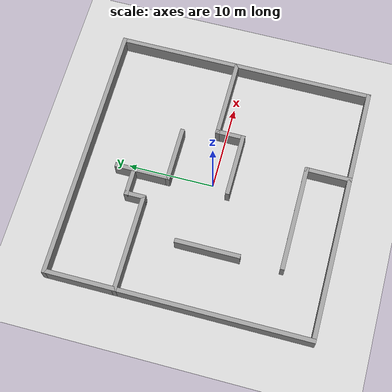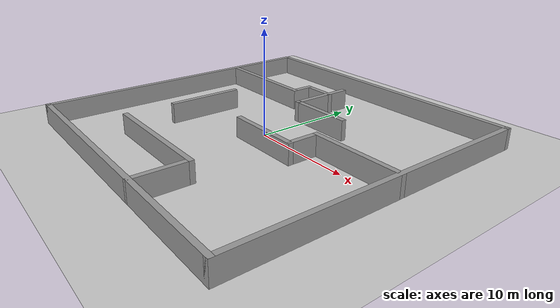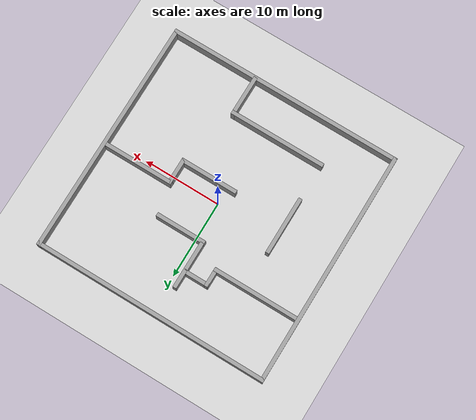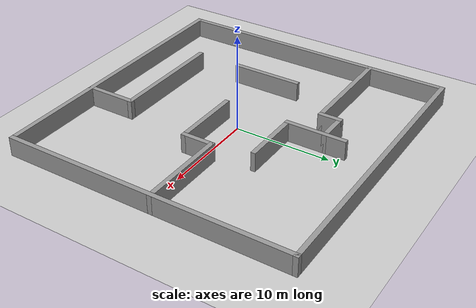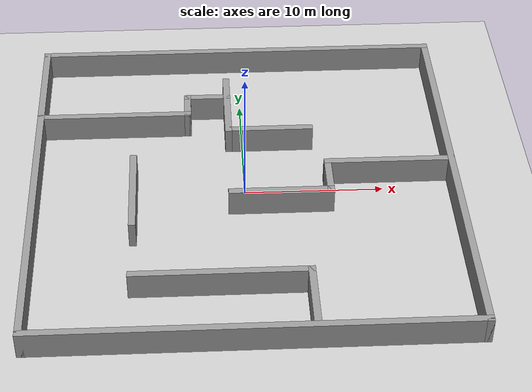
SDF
<sdf version="1.6">
 <world name="default">
  <light name="sun" type="directional">
   <pose>0 0 10 0 -0 0</pose>
   <diffuse>0.8 0.8 0.8 1</diffuse>
   <specular>0.1 0.1 0.1 1</specular>
   <attenuation>
    <range>1000</range>
    <constant>0.9</constant>
    <linear>0.01</linear>
    <quadratic>0.001</quadratic>
   </attenuation>
   <direction>-0.5 0.5 -1</direction>
  </light>
  <model name="ground_plane">
   <static>1</static>
   <link name="link">
    <collision name="collision">
     <geometry><plane><normal>0 0 1</normal><size>100 100</size></plane></geometry>
     <surface><friction><ode><mu>100</mu><mu2>50</mu2></ode></friction></surface>
    </collision>
    <visual name="visual">
     <cast_shadows>0</cast_shadows>
     <geometry><plane><normal>0 0 1</normal><size>100 100</size></plane></geometry>
     <material>
      <script><uri>file://media/materials/scripts/gazebo.material</uri><name>Gazebo/Grey</name></script>
     </material>
    </visual>
   </link>
  </model>
  <gravity>0 0 -9.8</gravity>
  <magnetic_field>6e-06 2.3e-05 -4.2e-05</magnetic_field>
  <atmosphere type="adiabatic"/>
  <physics name="default_physics" default="0" type="ode">
   <max_step_size>0.001</max_step_size>
   <real_time_factor>1</real_time_factor>
   <real_time_update_rate>1000</real_time_update_rate>
  </physics>
  <scene><ambient>0.4 0.4 0.4 1</ambient><background>0.7 0.7 0.7 1</background><shadows>1</shadows></scene>
  <spherical_coordinates>
   <surface_model>EARTH_WGS84</surface_model>
   <latitude_deg>0</latitude_deg>
   <longitude_deg>0</longitude_deg>
   <elevation>0</elevation>
   <heading_deg>0</heading_deg>
  </spherical_coordinates>
  <model name="Untitled">
   <link name="Wall_0">
    <collision name="Wall_0_Collision">
     <geometry><box><size>30.5 0.5 2</size></box></geometry>
     <pose>0 0 1 0 -0 0</pose>
    </collision>
    <visual name="Wall_0_Visual">
     <pose>0 0 1 0 -0 0</pose>
     <geometry><box><size>30.5 0.5 2</size></box></geometry>
     <material>
      <script><uri>file://media/materials/scripts/gazebo.material</uri><name>Gazebo/Grey</name></script>
      <ambient>1 1 1 1</ambient>
     </material>
    </visual>
    <pose>-15 0 0 0 0 -1.5708</pose>
   </link>
   <link name="Wall_1">
    <collision name="Wall_1_Collision">
     <geometry><box><size>30.5 0.5 2</size></box></geometry>
     <pose>0 0 1 0 -0 0</pose>
    </collision>
    <visual name="Wall_1_Visual">
     <pose>0 0 1 0 -0 0</pose>
     <geometry><box><size>30.5 0.5 2</size></box></geometry>
     <material>
      <script><uri>file://media/materials/scripts/gazebo.material</uri><name>Gazebo/Grey</name></script>
      <ambient>1 1 1 1</ambient>
     </material>
    </visual>
    <pose>0 -15 0 0 -0 0</pose>
   </link>
   <link name="Wall_10">
    <collision name="Wall_10_Collision">
     <geometry><box><size>7.5 0.5 2</size></box></geometry>
     <pose>0 0 1 0 -0 0</pose>
    </collision>
    <visual name="Wall_10_Visual">
     <pose>0 0 1 0 -0 0</pose>
     <geometry><box><size>7.5 0.5 2</size></box></geometry>
     <material>
      <script><uri>file://media/materials/scripts/gazebo.material</uri><name>Gazebo/Grey</name></script>
      <ambient>1 1 1 1</ambient>
     </material>
    </visual>
    <pose>2.5 -2 0 0 -0 3.14159</pose>
   </link>
   <link name="Wall_13">
    <collision name="Wall_13_Collision">
     <geometry><box><size>11.5 0.5 2</size></box></geometry>
     <pose>0 0 1 0 -0 0</pose>
    </collision>
    <visual name="Wall_13_Visual">
     <pose>0 0 1 0 -0 0</pose>
     <geometry><box><size>11.5 0.5 2</size></box></geometry>
     <material>
      <script><uri>file://media/materials/scripts/gazebo.material</uri><name>Gazebo/Grey</name></script>
      <ambient>1 1 1 1</ambient>
     </material>
    </visual>
    <pose>-9.5 7 0 0 -0 0</pose>
   </link>
   <link name="Wall_14">
    <collision name="Wall_14_Collision">
     <geometry><box><size>2.5 0.5 2</size></box></geometry>
     <pose>0 0 1 0 -0 0</pose>
    </collision>
    <visual name="Wall_14_Visual">
     <pose>0 0 1 0 -0 0</pose>
     <geometry><box><size>2.5 0.5 2</size></box></geometry>
     <material>
      <script><uri>file://media/materials/scripts/gazebo.material</uri><name>Gazebo/Grey</name></script>
      <ambient>1 1 1 1</ambient>
     </material>
    </visual>
    <pose>-4 8 0 0 -0 1.5708</pose>
   </link>
   <link name="Wall_15">
    <collision name="Wall_15_Collision">
     <geometry><box><size>3.5 0.5 2</size></box></geometry>
     <pose>0 0 1 0 -0 0</pose>
    </collision>
    <visual name="Wall_15_Visual">
     <pose>0 0 1 0 -0 0</pose>
     <geometry><box><size>3.5 0.5 2</size></box></geometry>
     <material>
      <script><uri>file://media/materials/scripts/gazebo.material</uri><name>Gazebo/Grey</name></script>
      <ambient>1 1 1 1</ambient>
     </material>
    </visual>
    <pose>-2.5 9 0 0 -0 0</pose>
   </link>
   <link name="Wall_18">
    <collision name="Wall_18_Collision">
     <geometry><box><size>6.5 0.5 2</size></box></geometry>
     <pose>0 0 1 0 -0 0</pose>
    </collision>
    <visual name="Wall_18_Visual">
     <pose>0 0 1 0 -0 0</pose>
     <geometry><box><size>6.5 0.5 2</size></box></geometry>
     <material>
      <script><uri>file://media/materials/scripts/gazebo.material</uri><name>Gazebo/Grey</name></script>
      <ambient>1 1 1 1</ambient>
     </material>
    </visual>
    <pose>2 5 0 0 -0 3.14159</pose>
   </link>
   <link name="Wall_19">
    <collision name="Wall_19_Collision">
     <geometry><box><size>6.5 0.5 2</size></box></geometry>
     <pose>0 0 1 0 -0 0</pose>
    </collision>
    <visual name="Wall_19_Visual">
     <pose>0 0 1 0 -0 0</pose>
     <geometry><box><size>6.5 0.5 2</size></box></geometry>
     <material>
      <script><uri>file://media/materials/scripts/gazebo.material</uri><name>Gazebo/Grey</name></script>
      <ambient>1 1 1 1</ambient>
     </material>
    </visual>
    <pose>-1 8 0 0 -0 1.5708</pose>
   </link>
   <link name="Wall_2">
    <collision name="Wall_2_Collision">
     <geometry><box><size>30.5 0.5 2</size></box></geometry>
     <pose>0 0 1 0 -0 0</pose>
    </collision>
    <visual name="Wall_2_Visual">
     <pose>0 0 1 0 -0 0</pose>
     <geometry><box><size>30.5 0.5 2</size></box></geometry>
     <material>
      <script><uri>file://media/materials/scripts/gazebo.material</uri><name>Gazebo/Grey</name></script>
      <ambient>1 1 1 1</ambient>
     </material>
    </visual>
    <pose>15 0 0 0 -0 1.5708</pose>
   </link>
   <link name="Wall_21">
    <collision name="Wall_21_Collision">
     <geometry><box><size>7.5 0.5 2</size></box></geometry>
     <pose>0 0 1 0 -0 0</pose>
    </collision>
    <visual name="Wall_21_Visual">
     <pose>0 0 1 0 -0 0</pose>
     <geometry><box><size>7.5 0.5 2</size></box></geometry>
     <material>
      <script><uri>file://media/materials/scripts/gazebo.material</uri><name>Gazebo/Grey</name></script>
      <ambient>1 1 1 1</ambient>
     </material>
    </visual>
    <pose>-8 -1.5 0 0 0 -1.5708</pose>
   </link>
   <link name="Wall_3">
    <collision name="Wall_3_Collision">
     <geometry><box><size>30.5 0.5 2</size></box></geometry>
     <pose>0 0 1 0 -0 0</pose>
    </collision>
    <visual name="Wall_3_Visual">
     <pose>0 0 1 0 -0 0</pose>
     <geometry><box><size>30.5 0.5 2</size></box></geometry>
     <material>
      <script><uri>file://media/materials/scripts/gazebo.material</uri><name>Gazebo/Grey</name></script>
      <ambient>1 1 1 1</ambient>
     </material>
    </visual>
    <pose>0 15 0 0 -0 3.14159</pose>
   </link>
   <link name="Wall_5">
    <collision name="Wall_5_Collision">
     <geometry><box><size>5.5 0.5 2</size></box></geometry>
     <pose>0 0 1 0 -0 0</pose>
    </collision>
    <visual name="Wall_5_Visual">
     <pose>0 0 1 0 -0 0</pose>
     <geometry><box><size>5.5 0.5 2</size></box></geometry>
     <material>
      <script><uri>file://media/materials/scripts/gazebo.material</uri><name>Gazebo/Grey</name></script>
      <ambient>1 1 1 1</ambient>
     </material>
    </visual>
    <pose>4 -12.5 0 0 -0 1.5708</pose>
   </link>
   <link name="Wall_6">
    <collision name="Wall_6_Collision">
     <geometry><box><size>12.5 0.5 2</size></box></geometry>
     <pose>0 0 1 0 -0 0</pose>
    </collision>
    <visual name="Wall_6_Visual">
     <pose>0 0 1 0 -0 0</pose>
     <geometry><box><size>12.5 0.5 2</size></box></geometry>
     <material>
      <script><uri>file://media/materials/scripts/gazebo.material</uri><name>Gazebo/Grey</name></script>
      <ambient>1 1 1 1</ambient>
     </material>
    </visual>
    <pose>-2 -10 0 0 -0 3.14159</pose>
   </link>
   <link name="Wall_8">
    <collision name="Wall_8_Collision">
     <geometry><box><size>9.5 0.5 2</size></box></geometry>
     <pose>0 0 1 0 -0 0</pose>
    </collision>
    <visual name="Wall_8_Visual">
     <pose>0 0 1 0 -0 0</pose>
     <geometry><box><size>9.5 0.5 2</size></box></geometry>
     <material>
      <script><uri>file://media/materials/scripts/gazebo.material</uri><name>Gazebo/Grey</name></script>
      <ambient>1 1 1 1</ambient>
     </material>
    </visual>
    <pose>10.5 1 0 0 -0 3.14159</pose>
   </link>
   <link name="Wall_9">
    <collision name="Wall_9_Collision">
     <geometry><box><size>3.5 0.5 2</size></box></geometry>
     <pose>0 0 1 0 -0 0</pose>
    </collision>
    <visual name="Wall_9_Visual">
     <pose>0 0 1 0 -0 0</pose>
     <geometry><box><size>3.5 0.5 2</size></box></geometry>
     <material>
      <script><uri>file://media/materials/scripts/gazebo.material</uri><name>Gazebo/Grey</name></script>
      <ambient>1 1 1 1</ambient>
     </material>
    </visual>
    <pose>6 -0.5 0 0 0 -1.5708</pose>
   </link>
   <static>1</static>
  </model>
 </world>
</sdf>
